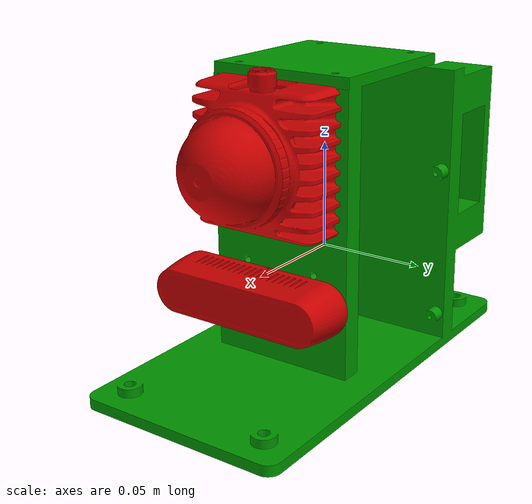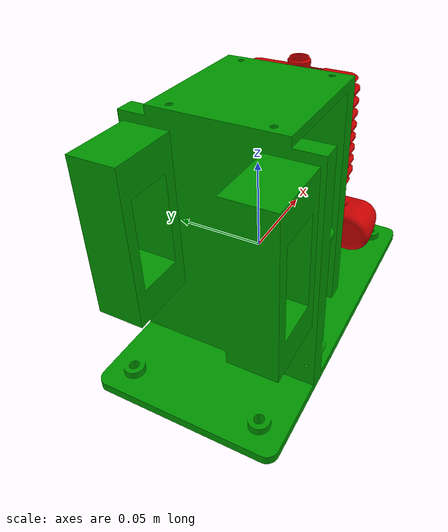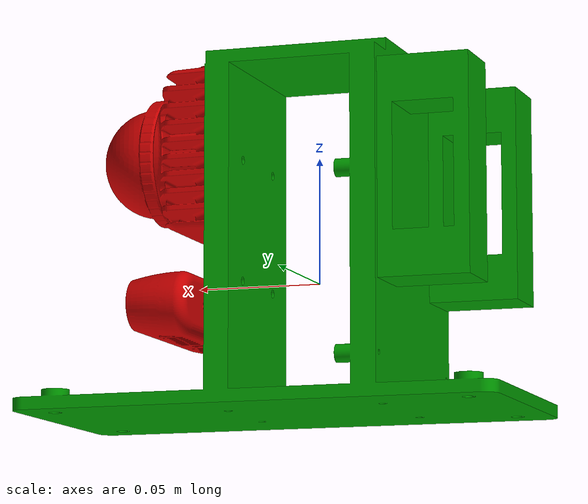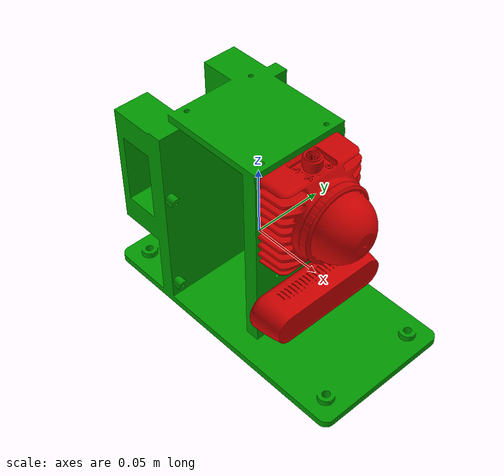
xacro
<?xml version="1.0"?>
<robot name="jig" xmlns:xacro="http://www.ros.org/wiki/xacro">

  <!-- Include all components -->
  <xacro:include filename="$(find jig_description)/urdf/base.urdf.xacro"/>
  <xacro:include filename="$(find jig_description)/urdf/lidar.urdf.xacro"/>
  <xacro:include filename="$(find jig_description)/urdf/realsense.urdf.xacro"/>
  <xacro:include filename="$(find jig_description)/urdf/gazebo_components.urdf.xacro"/>

</robot>

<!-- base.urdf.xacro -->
<robot xmlns:xacro="http://www.ros.org/wiki/xacro">

  <!-- ═══════════════════════════════════════════════════════════
       BASE LINK (Jetson Orin Nano)
  ═══════════════════════════════════════════════════════════ -->

  <link name="base_link">
    <visual>
      <origin xyz="0 0 0" rpy="0 0 0"/>
      <geometry>
        <mesh filename="package://jig_description/meshes/jig_base_v2.stl"
              scale="0.001 0.001 0.001"/>
      </geometry>
      <material name="green">
        <color rgba="0.0 0.6 0.0 1.0"/>
      </material>
    </visual>
    <collision>
      <origin xyz="0 0 0" rpy="0 0 0"/>
      <geometry>
        <mesh filename="package://jig_description/meshes/jig_base_v2.stl"
              scale="0.001 0.001 0.001"/>
      </geometry>
    </collision>
    <inertial>
      <origin xyz="0 0 0" rpy="0 0 0"/>
      <mass value="0.5"/>
      <inertia ixx="0.01" ixy="0" ixz="0"
               iyy="0.01" iyz="0" izz="0.01"/>
    </inertial>
  </link>

</robot>

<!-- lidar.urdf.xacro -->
<robot xmlns:xacro="http://www.ros.org/wiki/xacro">

  <!-- ═══════════════════════════════════════════════════════════
       LIDAR PARAMETERS  (single source of truth for the lidar pose)
  ═══════════════════════════════════════════════════════════ -->

  <xacro:property name="lidar_xyz" value="0.025 -0.005 0.035"/>
  <xacro:property name="lidar_rpy" value="0 ${pi/2} 0"/>

  <xacro:property name="imu_in_lidar_xyz" value="0.011 0.02329 -0.04412"/>

  <!-- ═══════════════════════════════════════════════════════════
       LIDAR LINK (MID360)
  ═══════════════════════════════════════════════════════════ -->

  <link name="lidar_link">
    <visual>
      <origin xyz="0 0 0" rpy="0 0 0"/>
      <geometry>
        <mesh filename="package://jig_description/meshes/mid360.stl"
              scale="0.001 0.001 0.001"/>
      </geometry>
      <material name="red">
        <color rgba="0.8 0.0 0.0 1.0"/>
      </material>
    </visual>
    <!-- Simple primitive collision: cheaper than the STL and avoids
         self-hits from a detailed mesh -->
    <collision>
      <origin xyz="0 0 0" rpy="0 0 0"/>
      <geometry>
        <cylinder radius="0.033" length="0.06"/>
      </geometry>
    </collision>
    <inertial>
      <origin xyz="0 0 0" rpy="0 0 0"/>
      <mass value="0.265"/>
      <inertia ixx="0.0001" ixy="0" ixz="0"
               iyy="0.0001" iyz="0" izz="0.0001"/>
    </inertial>
  </link>

  <joint name="base_to_lidar" type="fixed">
    <parent link="base_link"/>
    <child link="lidar_link"/>
    <origin xyz="${lidar_xyz}" rpy="${lidar_rpy}"/>
  </joint>

  <!-- ═══════════════════════════════════════════════════════════
       IMU LINK (MID360 built-in IMU)
  ═══════════════════════════════════════════════════════════ -->

  <link name="imu_link"/>

  <joint name="lidar_to_imu" type="fixed">
    <parent link="lidar_link"/>
    <child link="imu_link"/>
    <origin xyz="${imu_in_lidar_xyz}" rpy="0 0 0"/>
  </joint>

</robot>

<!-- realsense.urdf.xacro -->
<robot xmlns:xacro="http://www.ros.org/wiki/xacro">

  <!-- ═══════════════════════════════════════════════════════════
       REALSENSE PARAMETERS
  ═══════════════════════════════════════════════════════════ -->

  <xacro:property name="lidar_xyz"         value="0.050 -0.001 -0.01"/>
  <xacro:property name="lidar_rpy"         value="0 0 0"/>

  <!-- ═══════════════════════════════════════════════════════════
       REALSENSE LINK
  ═══════════════════════════════════════════════════════════ -->

  <link name="camera_link">
    <visual>
      <origin xyz="0 0 0" rpy="0 0 0"/>
      <geometry>
        <mesh filename="package://jig_description/meshes/realsense.stl"
              scale="0.001 0.001 0.001"/>
      </geometry>
      <material name="red">
        <color rgba="0.8 0.0 0.0 1.0"/>
      </material>
    </visual>
    <collision>
      <origin xyz="0 0 0" rpy="0 0 0"/>
      <geometry>
        <mesh filename="package://jig_description/meshes/realsense.stl"
              scale="0.001 0.001 0.001"/>
      </geometry>
    </collision>
    <inertial>
      <origin xyz="0 0 0" rpy="0 0 0"/>
      <mass value="0.3"/>
      <inertia ixx="0.001" ixy="0" ixz="0"
               iyy="0.001" iyz="0" izz="0.001"/>
    </inertial>
  </link>

  <!-- ═══════════════════════════════════════════════════════════
       REALSENSE JOINT
  ═══════════════════════════════════════════════════════════ -->

  <joint name="base_to_camera" type="fixed">
    <parent link="base_link"/>
    <child link="camera_link"/>
    <origin xyz="${lidar_xyz}" rpy="${lidar_rpy}"/>
  </joint>

</robot>
